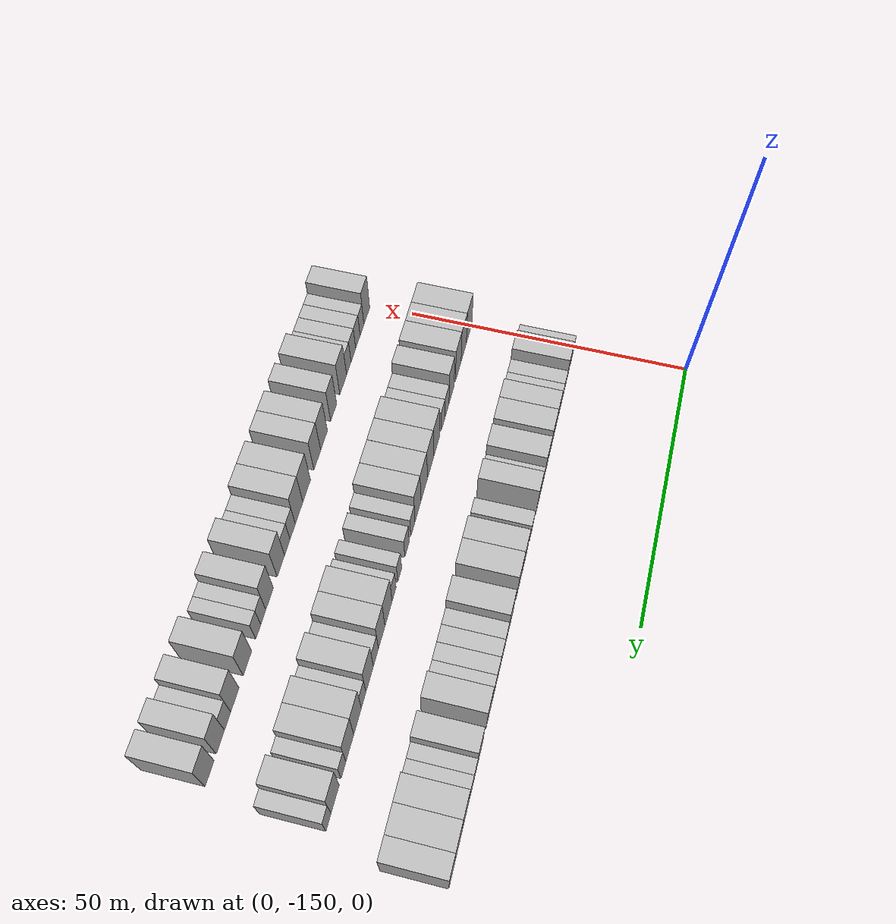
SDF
<sdf version="1.6">
 <world name="default">
  <model name="building_25">
   <static>1</static>
   <pose>25.0000 -146.7279 0 0.000000 0.000000 0.000000</pose>
   <link name="link">
    <pose>0 0 3.00 0 0 0</pose>
    <collision name="collision"><geometry><box><size>10.0000 2.4922 6.0000</size></box></geometry></collision>
    <visual name="visual">
     <cast_shadows>0</cast_shadows>
     <geometry><box><size>10.0000 2.4922 6.0000</size></box></geometry>
     <material>
      <script>
       <uri>model://HANNAS_wall/materials/scripts</uri>
       <uri>model://HANNAS_wall/materials/textures</uri>
       <name>vrc/HANNAS_wall</name>
      </script>
     </material>
    </visual>
   </link>
  </model>
  <model name="building_26">
   <static>1</static>
   <pose>25.0000 -142.4939 0 0.000000 0.000000 0.000000</pose>
   <link name="link">
    <pose>0 0 4.50 0 0 0</pose>
    <collision name="collision"><geometry><box><size>10.0000 3.9759 9.0000</size></box></geometry></collision>
    <visual name="visual">
     <cast_shadows>0</cast_shadows>
     <geometry><box><size>10.0000 3.9759 9.0000</size></box></geometry>
     <material>
      <script>
       <uri>model://HANNAS_wall/materials/scripts</uri>
       <uri>model://HANNAS_wall/materials/textures</uri>
       <name>vrc/HANNAS_wall</name>
      </script>
     </material>
    </visual>
   </link>
  </model>
  <model name="building_27">
   <static>1</static>
   <pose>25.0000 -139.1345 0 0.000000 0.000000 0.000000</pose>
   <link name="link">
    <pose>0 0 3.00 0 0 0</pose>
    <collision name="collision"><geometry><box><size>10.0000 2.7429 6.0000</size></box></geometry></collision>
    <visual name="visual">
     <cast_shadows>0</cast_shadows>
     <geometry><box><size>10.0000 2.7429 6.0000</size></box></geometry>
     <material>
      <script>
       <uri>model://HANNAS_wall/materials/scripts</uri>
       <uri>model://HANNAS_wall/materials/textures</uri>
       <name>vrc/HANNAS_wall</name>
      </script>
     </material>
    </visual>
   </link>
  </model>
  <model name="building_28">
   <static>1</static>
   <pose>25.0000 -136.5492 0 0.000000 0.000000 0.000000</pose>
   <link name="link">
    <pose>0 0 3.00 0 0 0</pose>
    <collision name="collision"><geometry><box><size>10.0000 2.4277 6.0000</size></box></geometry></collision>
    <visual name="visual">
     <cast_shadows>0</cast_shadows>
     <geometry><box><size>10.0000 2.4277 6.0000</size></box></geometry>
     <material>
      <script>
       <uri>model://HANNAS_wall/materials/scripts</uri>
       <uri>model://HANNAS_wall/materials/textures</uri>
       <name>vrc/HANNAS_wall</name>
      </script>
     </material>
    </visual>
   </link>
  </model>
  <model name="building_29">
   <static>1</static>
   <pose>25.0000 -132.5048 0 0.000000 0.000000 0.000000</pose>
   <link name="link">
    <pose>0 0 4.50 0 0 0</pose>
    <collision name="collision"><geometry><box><size>10.0000 3.6610 9.0000</size></box></geometry></collision>
    <visual name="visual">
     <cast_shadows>0</cast_shadows>
     <geometry><box><size>10.0000 3.6610 9.0000</size></box></geometry>
     <material>
      <script>
       <uri>model://HANNAS_wall/materials/scripts</uri>
       <uri>model://HANNAS_wall/materials/textures</uri>
       <name>vrc/HANNAS_wall</name>
      </script>
     </material>
    </visual>
   </link>
  </model>
  <model name="building_30">
   <static>1</static>
   <pose>25.0000 -128.5264 0 0.000000 0.000000 0.000000</pose>
   <link name="link">
    <pose>0 0 4.50 0 0 0</pose>
    <collision name="collision"><geometry><box><size>10.0000 4.2959 9.0000</size></box></geometry></collision>
    <visual name="visual">
     <cast_shadows>0</cast_shadows>
     <geometry><box><size>10.0000 4.2959 9.0000</size></box></geometry>
     <material>
      <script>
       <uri>model://HANNAS_wall/materials/scripts</uri>
       <uri>model://HANNAS_wall/materials/textures</uri>
       <name>vrc/HANNAS_wall</name>
      </script>
     </material>
    </visual>
   </link>
  </model>
  <model name="building_31">
   <static>1</static>
   <pose>25.0000 -123.2931 0 0.000000 0.000000 0.000000</pose>
   <link name="link">
    <pose>0 0 4.50 0 0 0</pose>
    <collision name="collision"><geometry><box><size>10.0000 4.1706 9.0000</size></box></geometry></collision>
    <visual name="visual">
     <cast_shadows>0</cast_shadows>
     <geometry><box><size>10.0000 4.1706 9.0000</size></box></geometry>
     <material>
      <script>
       <uri>model://HANNAS_wall/materials/scripts</uri>
       <uri>model://HANNAS_wall/materials/textures</uri>
       <name>vrc/HANNAS_wall</name>
      </script>
     </material>
    </visual>
   </link>
  </model>
  <model name="building_32">
   <static>1</static>
   <pose>25.0000 -119.9647 0 0.000000 0.000000 0.000000</pose>
   <link name="link">
    <pose>0 0 3.00 0 0 0</pose>
    <collision name="collision"><geometry><box><size>10.0000 2.4863 6.0000</size></box></geometry></collision>
    <visual name="visual">
     <cast_shadows>0</cast_shadows>
     <geometry><box><size>10.0000 2.4863 6.0000</size></box></geometry>
     <material>
      <script>
       <uri>model://HANNAS_wall/materials/scripts</uri>
       <uri>model://HANNAS_wall/materials/textures</uri>
       <name>vrc/HANNAS_wall</name>
      </script>
     </material>
    </visual>
   </link>
  </model>
  <model name="building_33">
   <static>1</static>
   <pose>25.0000 -116.8746 0 0.000000 0.000000 0.000000</pose>
   <link name="link">
    <pose>0 0 4.50 0 0 0</pose>
    <collision name="collision"><geometry><box><size>10.0000 3.6937 9.0000</size></box></geometry></collision>
    <visual name="visual">
     <cast_shadows>0</cast_shadows>
     <geometry><box><size>10.0000 3.6937 9.0000</size></box></geometry>
     <material>
      <script>
       <uri>model://HANNAS_wall/materials/scripts</uri>
       <uri>model://HANNAS_wall/materials/textures</uri>
       <name>vrc/HANNAS_wall</name>
      </script>
     </material>
    </visual>
   </link>
  </model>
  <model name="building_34">
   <static>1</static>
   <pose>25.0000 -111.6336 0 0.000000 0.000000 0.000000</pose>
   <link name="link">
    <pose>0 0 3.00 0 0 0</pose>
    <collision name="collision"><geometry><box><size>10.0000 2.7883 6.0000</size></box></geometry></collision>
    <visual name="visual">
     <cast_shadows>0</cast_shadows>
     <geometry><box><size>10.0000 2.7883 6.0000</size></box></geometry>
     <material>
      <script>
       <uri>model://HANNAS_wall/materials/scripts</uri>
       <uri>model://HANNAS_wall/materials/textures</uri>
       <name>vrc/HANNAS_wall</name>
      </script>
     </material>
    </visual>
   </link>
  </model>
  <model name="building_35">
   <static>1</static>
   <pose>25.0000 -106.2833 0 0.000000 0.000000 0.000000</pose>
   <link name="link">
    <pose>0 0 4.50 0 0 0</pose>
    <collision name="collision"><geometry><box><size>10.0000 3.9123 9.0000</size></box></geometry></collision>
    <visual name="visual">
     <cast_shadows>0</cast_shadows>
     <geometry><box><size>10.0000 3.9123 9.0000</size></box></geometry>
     <material>
      <script>
       <uri>model://HANNAS_wall/materials/scripts</uri>
       <uri>model://HANNAS_wall/materials/textures</uri>
       <name>vrc/HANNAS_wall</name>
      </script>
     </material>
    </visual>
   </link>
  </model>
  <model name="building_36">
   <static>1</static>
   <pose>25.0000 -102.1065 0 0.000000 0.000000 0.000000</pose>
   <link name="link">
    <pose>0 0 4.50 0 0 0</pose>
    <collision name="collision"><geometry><box><size>10.0000 4.4412 9.0000</size></box></geometry></collision>
    <visual name="visual">
     <cast_shadows>0</cast_shadows>
     <geometry><box><size>10.0000 4.4412 9.0000</size></box></geometry>
     <material>
      <script>
       <uri>model://HANNAS_wall/materials/scripts</uri>
       <uri>model://HANNAS_wall/materials/textures</uri>
       <name>vrc/HANNAS_wall</name>
      </script>
     </material>
    </visual>
   </link>
  </model>
  <model name="building_37">
   <static>1</static>
   <pose>25.0000 -95.7705 0 0.000000 0.000000 0.000000</pose>
   <link name="link">
    <pose>0 0 4.50 0 0 0</pose>
    <collision name="collision"><geometry><box><size>10.0000 4.2309 9.0000</size></box></geometry></collision>
    <visual name="visual">
     <cast_shadows>0</cast_shadows>
     <geometry><box><size>10.0000 4.2309 9.0000</size></box></geometry>
     <material>
      <script>
       <uri>model://HANNAS_wall/materials/scripts</uri>
       <uri>model://HANNAS_wall/materials/textures</uri>
       <name>vrc/HANNAS_wall</name>
      </script>
     </material>
    </visual>
   </link>
  </model>
  <model name="building_38">
   <static>1</static>
   <pose>25.0000 -92.2708 0 0.000000 0.000000 0.000000</pose>
   <link name="link">
    <pose>0 0 3.00 0 0 0</pose>
    <collision name="collision"><geometry><box><size>10.0000 2.7686 6.0000</size></box></geometry></collision>
    <visual name="visual">
     <cast_shadows>0</cast_shadows>
     <geometry><box><size>10.0000 2.7686 6.0000</size></box></geometry>
     <material>
      <script>
       <uri>model://HANNAS_wall/materials/scripts</uri>
       <uri>model://HANNAS_wall/materials/textures</uri>
       <name>vrc/HANNAS_wall</name>
      </script>
     </material>
    </visual>
   </link>
  </model>
  <model name="building_39">
   <static>1</static>
   <pose>25.0000 -89.4517 0 0.000000 0.000000 0.000000</pose>
   <link name="link">
    <pose>0 0 3.00 0 0 0</pose>
    <collision name="collision"><geometry><box><size>10.0000 2.8696 6.0000</size></box></geometry></collision>
    <visual name="visual">
     <cast_shadows>0</cast_shadows>
     <geometry><box><size>10.0000 2.8696 6.0000</size></box></geometry>
     <material>
      <script>
       <uri>model://HANNAS_wall/materials/scripts</uri>
       <uri>model://HANNAS_wall/materials/textures</uri>
       <name>vrc/HANNAS_wall</name>
      </script>
     </material>
    </visual>
   </link>
  </model>
  <model name="building_40">
   <static>1</static>
   <pose>25.0000 -86.5726 0 0.000000 0.000000 0.000000</pose>
   <link name="link">
    <pose>0 0 3.00 0 0 0</pose>
    <collision name="collision"><geometry><box><size>10.0000 2.8887 6.0000</size></box></geometry></collision>
    <visual name="visual">
     <cast_shadows>0</cast_shadows>
     <geometry><box><size>10.0000 2.8887 6.0000</size></box></geometry>
     <material>
      <script>
       <uri>model://HANNAS_wall/materials/scripts</uri>
       <uri>model://HANNAS_wall/materials/textures</uri>
       <name>vrc/HANNAS_wall</name>
      </script>
     </material>
    </visual>
   </link>
  </model>
  <model name="building_41">
   <static>1</static>
   <pose>25.0000 -83.7462 0 0.000000 0.000000 0.000000</pose>
   <link name="link">
    <pose>0 0 3.00 0 0 0</pose>
    <collision name="collision"><geometry><box><size>10.0000 2.7640 6.0000</size></box></geometry></collision>
    <visual name="visual">
     <cast_shadows>0</cast_shadows>
     <geometry><box><size>10.0000 2.7640 6.0000</size></box></geometry>
     <material>
      <script>
       <uri>model://HANNAS_wall/materials/scripts</uri>
       <uri>model://HANNAS_wall/materials/textures</uri>
       <name>vrc/HANNAS_wall</name>
      </script>
     </material>
    </visual>
   </link>
  </model>
  <model name="building_42">
   <static>1</static>
   <pose>25.0000 -80.3539 0 0.000000 0.000000 0.000000</pose>
   <link name="link">
    <pose>0 0 4.50 0 0 0</pose>
    <collision name="collision"><geometry><box><size>10.0000 4.0206 9.0000</size></box></geometry></collision>
    <visual name="visual">
     <cast_shadows>0</cast_shadows>
     <geometry><box><size>10.0000 4.0206 9.0000</size></box></geometry>
     <material>
      <script>
       <uri>model://HANNAS_wall/materials/scripts</uri>
       <uri>model://HANNAS_wall/materials/textures</uri>
       <name>vrc/HANNAS_wall</name>
      </script>
     </material>
    </visual>
   </link>
  </model>
  <model name="building_43">
   <static>1</static>
   <pose>25.0000 -74.4029 0 0.000000 0.000000 0.000000</pose>
   <link name="link">
    <pose>0 0 4.50 0 0 0</pose>
    <collision name="collision"><geometry><box><size>10.0000 3.8813 9.0000</size></box></geometry></collision>
    <visual name="visual">
     <cast_shadows>0</cast_shadows>
     <geometry><box><size>10.0000 3.8813 9.0000</size></box></geometry>
     <material>
      <script>
       <uri>model://HANNAS_wall/materials/scripts</uri>
       <uri>model://HANNAS_wall/materials/textures</uri>
       <name>vrc/HANNAS_wall</name>
      </script>
     </material>
    </visual>
   </link>
  </model>
  <model name="building_44">
   <static>1</static>
   <pose>25.0000 -71.2445 0 0.000000 0.000000 0.000000</pose>
   <link name="link">
    <pose>0 0 3.00 0 0 0</pose>
    <collision name="collision"><geometry><box><size>10.0000 2.4356 6.0000</size></box></geometry></collision>
    <visual name="visual">
     <cast_shadows>0</cast_shadows>
     <geometry><box><size>10.0000 2.4356 6.0000</size></box></geometry>
     <material>
      <script>
       <uri>model://HANNAS_wall/materials/scripts</uri>
       <uri>model://HANNAS_wall/materials/textures</uri>
       <name>vrc/HANNAS_wall</name>
      </script>
     </material>
    </visual>
   </link>
  </model>
  <model name="building_45">
   <static>1</static>
   <pose>25.0000 -68.6941 0 0.000000 0.000000 0.000000</pose>
   <link name="link">
    <pose>0 0 3.00 0 0 0</pose>
    <collision name="collision"><geometry><box><size>10.0000 2.6651 6.0000</size></box></geometry></collision>
    <visual name="visual">
     <cast_shadows>0</cast_shadows>
     <geometry><box><size>10.0000 2.6651 6.0000</size></box></geometry>
     <material>
      <script>
       <uri>model://HANNAS_wall/materials/scripts</uri>
       <uri>model://HANNAS_wall/materials/textures</uri>
       <name>vrc/HANNAS_wall</name>
      </script>
     </material>
    </visual>
   </link>
  </model>
  <model name="building_46">
   <static>1</static>
   <pose>25.0000 -65.2576 0 0.000000 0.000000 0.000000</pose>
   <link name="link">
    <pose>0 0 4.50 0 0 0</pose>
    <collision name="collision"><geometry><box><size>10.0000 4.2079 9.0000</size></box></geometry></collision>
    <visual name="visual">
     <cast_shadows>0</cast_shadows>
     <geometry><box><size>10.0000 4.2079 9.0000</size></box></geometry>
     <material>
      <script>
       <uri>model://HANNAS_wall/materials/scripts</uri>
       <uri>model://HANNAS_wall/materials/textures</uri>
       <name>vrc/HANNAS_wall</name>
      </script>
     </material>
    </visual>
   </link>
  </model>
  <model name="building_47">
   <static>1</static>
   <pose>25.0000 -60.9126 0 0.000000 0.000000 0.000000</pose>
   <link name="link">
    <pose>0 0 4.50 0 0 0</pose>
    <collision name="collision"><geometry><box><size>10.0000 4.4822 9.0000</size></box></geometry></collision>
    <visual name="visual">
     <cast_shadows>0</cast_shadows>
     <geometry><box><size>10.0000 4.4822 9.0000</size></box></geometry>
     <material>
      <script>
       <uri>model://HANNAS_wall/materials/scripts</uri>
       <uri>model://HANNAS_wall/materials/textures</uri>
       <name>vrc/HANNAS_wall</name>
      </script>
     </material>
    </visual>
   </link>
  </model>
  <model name="building_48">
   <static>1</static>
   <pose>25.0000 -56.8321 0 0.000000 0.000000 0.000000</pose>
   <link name="link">
    <pose>0 0 4.50 0 0 0</pose>
    <collision name="collision"><geometry><box><size>10.0000 3.6788 9.0000</size></box></geometry></collision>
    <visual name="visual">
     <cast_shadows>0</cast_shadows>
     <geometry><box><size>10.0000 3.6788 9.0000</size></box></geometry>
     <material>
      <script>
       <uri>model://HANNAS_wall/materials/scripts</uri>
       <uri>model://HANNAS_wall/materials/textures</uri>
       <name>vrc/HANNAS_wall</name>
      </script>
     </material>
    </visual>
   </link>
  </model>
  <model name="building_138">
   <static>1</static>
   <pose>44.0000 -148.0430 0 0.000000 0.000000 0.000000</pose>
   <link name="link">
    <pose>0 0 4.50 0 0 0</pose>
    <collision name="collision"><geometry><box><size>10.0000 4.4079 9.0000</size></box></geometry></collision>
    <visual name="visual">
     <cast_shadows>0</cast_shadows>
     <geometry><box><size>10.0000 4.4079 9.0000</size></box></geometry>
     <material>
      <script>
       <uri>model://HANNAS_wall/materials/scripts</uri>
       <uri>model://HANNAS_wall/materials/textures</uri>
       <name>vrc/HANNAS_wall</name>
      </script>
     </material>
    </visual>
   </link>
  </model>
  <model name="building_139">
   <static>1</static>
   <pose>44.0000 -143.8289 0 0.000000 0.000000 0.000000</pose>
   <link name="link">
    <pose>0 0 4.50 0 0 0</pose>
    <collision name="collision"><geometry><box><size>10.0000 4.0201 9.0000</size></box></geometry></collision>
    <visual name="visual">
     <cast_shadows>0</cast_shadows>
     <geometry><box><size>10.0000 4.0201 9.0000</size></box></geometry>
     <material>
      <script>
       <uri>model://HANNAS_wall/materials/scripts</uri>
       <uri>model://HANNAS_wall/materials/textures</uri>
       <name>vrc/HANNAS_wall</name>
      </script>
     </material>
    </visual>
   </link>
  </model>
  <model name="building_140">
   <static>1</static>
   <pose>44.0000 -139.6996 0 0.000000 0.000000 0.000000</pose>
   <link name="link">
    <pose>0 0 4.50 0 0 0</pose>
    <collision name="collision"><geometry><box><size>10.0000 4.2386 9.0000</size></box></geometry></collision>
    <visual name="visual">
     <cast_shadows>0</cast_shadows>
     <geometry><box><size>10.0000 4.2386 9.0000</size></box></geometry>
     <material>
      <script>
       <uri>model://HANNAS_wall/materials/scripts</uri>
       <uri>model://HANNAS_wall/materials/textures</uri>
       <name>vrc/HANNAS_wall</name>
      </script>
     </material>
    </visual>
   </link>
  </model>
  <model name="building_141">
   <static>1</static>
   <pose>44.0000 -134.6802 0 0.000000 0.000000 0.000000</pose>
   <link name="link">
    <pose>0 0 4.50 0 0 0</pose>
    <collision name="collision"><geometry><box><size>10.0000 3.8001 9.0000</size></box></geometry></collision>
    <visual name="visual">
     <cast_shadows>0</cast_shadows>
     <geometry><box><size>10.0000 3.8001 9.0000</size></box></geometry>
     <material>
      <script>
       <uri>model://HANNAS_wall/materials/scripts</uri>
       <uri>model://HANNAS_wall/materials/textures</uri>
       <name>vrc/HANNAS_wall</name>
      </script>
     </material>
    </visual>
   </link>
  </model>
  <model name="building_142">
   <static>1</static>
   <pose>44.0000 -131.3070 0 0.000000 0.000000 0.000000</pose>
   <link name="link">
    <pose>0 0 3.00 0 0 0</pose>
    <collision name="collision"><geometry><box><size>10.0000 2.9463 6.0000</size></box></geometry></collision>
    <visual name="visual">
     <cast_shadows>0</cast_shadows>
     <geometry><box><size>10.0000 2.9463 6.0000</size></box></geometry>
     <material>
      <script>
       <uri>model://HANNAS_wall/materials/scripts</uri>
       <uri>model://HANNAS_wall/materials/textures</uri>
       <name>vrc/HANNAS_wall</name>
      </script>
     </material>
    </visual>
   </link>
  </model>
  <model name="building_143">
   <static>1</static>
   <pose>44.0000 -128.4388 0 0.000000 0.000000 0.000000</pose>
   <link name="link">
    <pose>0 0 3.00 0 0 0</pose>
    <collision name="collision"><geometry><box><size>10.0000 2.7901 6.0000</size></box></geometry></collision>
    <visual name="visual">
     <cast_shadows>0</cast_shadows>
     <geometry><box><size>10.0000 2.7901 6.0000</size></box></geometry>
     <material>
      <script>
       <uri>model://HANNAS_wall/materials/scripts</uri>
       <uri>model://HANNAS_wall/materials/textures</uri>
       <name>vrc/HANNAS_wall</name>
      </script>
     </material>
    </visual>
   </link>
  </model>
  <model name="building_144">
   <static>1</static>
   <pose>44.0000 -123.9021 0 0.000000 0.000000 0.000000</pose>
   <link name="link">
    <pose>0 0 4.50 0 0 0</pose>
    <collision name="collision"><geometry><box><size>10.0000 4.2832 9.0000</size></box></geometry></collision>
    <visual name="visual">
     <cast_shadows>0</cast_shadows>
     <geometry><box><size>10.0000 4.2832 9.0000</size></box></geometry>
     <material>
      <script>
       <uri>model://HANNAS_wall/materials/scripts</uri>
       <uri>model://HANNAS_wall/materials/textures</uri>
       <name>vrc/HANNAS_wall</name>
      </script>
     </material>
    </visual>
   </link>
  </model>
  <model name="building_145">
   <static>1</static>
   <pose>44.0000 -119.6286 0 0.000000 0.000000 0.000000</pose>
   <link name="link">
    <pose>0 0 4.50 0 0 0</pose>
    <collision name="collision"><geometry><box><size>10.0000 4.2638 9.0000</size></box></geometry></collision>
    <visual name="visual">
     <cast_shadows>0</cast_shadows>
     <geometry><box><size>10.0000 4.2638 9.0000</size></box></geometry>
     <material>
      <script>
       <uri>model://HANNAS_wall/materials/scripts</uri>
       <uri>model://HANNAS_wall/materials/textures</uri>
       <name>vrc/HANNAS_wall</name>
      </script>
     </material>
    </visual>
   </link>
  </model>
  <model name="building_146">
   <static>1</static>
   <pose>44.0000 -115.3119 0 0.000000 0.000000 0.000000</pose>
   <link name="link">
    <pose>0 0 4.50 0 0 0</pose>
    <collision name="collision"><geometry><box><size>10.0000 4.3695 9.0000</size></box></geometry></collision>
    <visual name="visual">
     <cast_shadows>0</cast_shadows>
     <geometry><box><size>10.0000 4.3695 9.0000</size></box></geometry>
     <material>
      <script>
       <uri>model://HANNAS_wall/materials/scripts</uri>
       <uri>model://HANNAS_wall/materials/textures</uri>
       <name>vrc/HANNAS_wall</name>
      </script>
     </material>
    </visual>
   </link>
  </model>
  <model name="building_147">
   <static>1</static>
   <pose>44.0000 -111.1638 0 0.000000 0.000000 0.000000</pose>
   <link name="link">
    <pose>0 0 4.50 0 0 0</pose>
    <collision name="collision"><geometry><box><size>10.0000 3.9267 9.0000</size></box></geometry></collision>
    <visual name="visual">
     <cast_shadows>0</cast_shadows>
     <geometry><box><size>10.0000 3.9267 9.0000</size></box></geometry>
     <material>
      <script>
       <uri>model://HANNAS_wall/materials/scripts</uri>
       <uri>model://HANNAS_wall/materials/textures</uri>
       <name>vrc/HANNAS_wall</name>
      </script>
     </material>
    </visual>
   </link>
  </model>
  <model name="building_148">
   <static>1</static>
   <pose>44.0000 -107.8370 0 0.000000 0.000000 0.000000</pose>
   <link name="link">
    <pose>0 0 3.00 0 0 0</pose>
    <collision name="collision"><geometry><box><size>10.0000 2.7271 6.0000</size></box></geometry></collision>
    <visual name="visual">
     <cast_shadows>0</cast_shadows>
     <geometry><box><size>10.0000 2.7271 6.0000</size></box></geometry>
     <material>
      <script>
       <uri>model://HANNAS_wall/materials/scripts</uri>
       <uri>model://HANNAS_wall/materials/textures</uri>
       <name>vrc/HANNAS_wall</name>
      </script>
     </material>
    </visual>
   </link>
  </model>
  <model name="building_149">
   <static>1</static>
   <pose>44.0000 -104.0694 0 0.000000 0.000000 0.000000</pose>
   <link name="link">
    <pose>0 0 3.00 0 0 0</pose>
    <collision name="collision"><geometry><box><size>10.0000 2.8081 6.0000</size></box></geometry></collision>
    <visual name="visual">
     <cast_shadows>0</cast_shadows>
     <geometry><box><size>10.0000 2.8081 6.0000</size></box></geometry>
     <material>
      <script>
       <uri>model://HANNAS_wall/materials/scripts</uri>
       <uri>model://HANNAS_wall/materials/textures</uri>
       <name>vrc/HANNAS_wall</name>
      </script>
     </material>
    </visual>
   </link>
  </model>
  <model name="building_150">
   <static>1</static>
   <pose>44.0000 -99.4450 0 0.000000 0.000000 0.000000</pose>
   <link name="link">
    <pose>0 0 3.00 0 0 0</pose>
    <collision name="collision"><geometry><box><size>10.0000 2.4406 6.0000</size></box></geometry></collision>
    <visual name="visual">
     <cast_shadows>0</cast_shadows>
     <geometry><box><size>10.0000 2.4406 6.0000</size></box></geometry>
     <material>
      <script>
       <uri>model://HANNAS_wall/materials/scripts</uri>
       <uri>model://HANNAS_wall/materials/textures</uri>
       <name>vrc/HANNAS_wall</name>
      </script>
     </material>
    </visual>
   </link>
  </model>
  <model name="building_151">
   <static>1</static>
   <pose>44.0000 -95.9896 0 0.000000 0.000000 0.000000</pose>
   <link name="link">
    <pose>0 0 3.00 0 0 0</pose>
    <collision name="collision"><geometry><box><size>10.0000 2.4702 6.0000</size></box></geometry></collision>
    <visual name="visual">
     <cast_shadows>0</cast_shadows>
     <geometry><box><size>10.0000 2.4702 6.0000</size></box></geometry>
     <material>
      <script>
       <uri>model://HANNAS_wall/materials/scripts</uri>
       <uri>model://HANNAS_wall/materials/textures</uri>
       <name>vrc/HANNAS_wall</name>
      </script>
     </material>
    </visual>
   </link>
  </model>
  <model name="building_152">
   <static>1</static>
   <pose>44.0000 -92.6120 0 0.000000 0.000000 0.000000</pose>
   <link name="link">
    <pose>0 0 4.50 0 0 0</pose>
    <collision name="collision"><geometry><box><size>10.0000 4.2850 9.0000</size></box></geometry></collision>
    <visual name="visual">
     <cast_shadows>0</cast_shadows>
     <geometry><box><size>10.0000 4.2850 9.0000</size></box></geometry>
     <material>
      <script>
       <uri>model://HANNAS_wall/materials/scripts</uri>
       <uri>model://HANNAS_wall/materials/textures</uri>
       <name>vrc/HANNAS_wall</name>
      </script>
     </material>
    </visual>
   </link>
  </model>
  <model name="building_153">
   <static>1</static>
   <pose>44.0000 -88.5623 0 0.000000 0.000000 0.000000</pose>
   <link name="link">
    <pose>0 0 4.50 0 0 0</pose>
    <collision name="collision"><geometry><box><size>10.0000 3.8144 9.0000</size></box></geometry></collision>
    <visual name="visual">
     <cast_shadows>0</cast_shadows>
     <geometry><box><size>10.0000 3.8144 9.0000</size></box></geometry>
     <material>
      <script>
       <uri>model://HANNAS_wall/materials/scripts</uri>
       <uri>model://HANNAS_wall/materials/textures</uri>
       <name>vrc/HANNAS_wall</name>
      </script>
     </material>
    </visual>
   </link>
  </model>
  <model name="building_154">
   <static>1</static>
   <pose>44.0000 -85.1809 0 0.000000 0.000000 0.000000</pose>
   <link name="link">
    <pose>0 0 3.00 0 0 0</pose>
    <collision name="collision"><geometry><box><size>10.0000 2.9485 6.0000</size></box></geometry></collision>
    <visual name="visual">
     <cast_shadows>0</cast_shadows>
     <geometry><box><size>10.0000 2.9485 6.0000</size></box></geometry>
     <material>
      <script>
       <uri>model://HANNAS_wall/materials/scripts</uri>
       <uri>model://HANNAS_wall/materials/textures</uri>
       <name>vrc/HANNAS_wall</name>
      </script>
     </material>
    </visual>
   </link>
  </model>
  <model name="building_155">
   <static>1</static>
   <pose>44.0000 -81.6062 0 0.000000 0.000000 0.000000</pose>
   <link name="link">
    <pose>0 0 4.50 0 0 0</pose>
    <collision name="collision"><geometry><box><size>10.0000 4.2010 9.0000</size></box></geometry></collision>
    <visual name="visual">
     <cast_shadows>0</cast_shadows>
     <geometry><box><size>10.0000 4.2010 9.0000</size></box></geometry>
     <material>
      <script>
       <uri>model://HANNAS_wall/materials/scripts</uri>
       <uri>model://HANNAS_wall/materials/textures</uri>
       <name>vrc/HANNAS_wall</name>
      </script>
     </material>
    </visual>
   </link>
  </model>
  <model name="building_156">
   <static>1</static>
   <pose>44.0000 -78.2153 0 0.000000 0.000000 0.000000</pose>
   <link name="link">
    <pose>0 0 3.00 0 0 0</pose>
    <collision name="collision"><geometry><box><size>10.0000 2.5806 6.0000</size></box></geometry></collision>
    <visual name="visual">
     <cast_shadows>0</cast_shadows>
     <geometry><box><size>10.0000 2.5806 6.0000</size></box></geometry>
     <material>
      <script>
       <uri>model://HANNAS_wall/materials/scripts</uri>
       <uri>model://HANNAS_wall/materials/textures</uri>
       <name>vrc/HANNAS_wall</name>
      </script>
     </material>
    </visual>
   </link>
  </model>
  <model name="building_157">
   <static>1</static>
   <pose>44.0000 -74.8709 0 0.000000 0.000000 0.000000</pose>
   <link name="link">
    <pose>0 0 4.50 0 0 0</pose>
    <collision name="collision"><geometry><box><size>10.0000 4.1081 9.0000</size></box></geometry></collision>
    <visual name="visual">
     <cast_shadows>0</cast_shadows>
     <geometry><box><size>10.0000 4.1081 9.0000</size></box></geometry>
     <material>
      <script>
       <uri>model://HANNAS_wall/materials/scripts</uri>
       <uri>model://HANNAS_wall/materials/textures</uri>
       <name>vrc/HANNAS_wall</name>
      </script>
     </material>
    </visual>
   </link>
  </model>
  <model name="building_158">
   <static>1</static>
   <pose>44.0000 -70.7129 0 0.000000 0.000000 0.000000</pose>
   <link name="link">
    <pose>0 0 4.50 0 0 0</pose>
    <collision name="collision"><geometry><box><size>10.0000 4.2079 9.0000</size></box></geometry></collision>
    <visual name="visual">
     <cast_shadows>0</cast_shadows>
     <geometry><box><size>10.0000 4.2079 9.0000</size></box></geometry>
     <material>
      <script>
       <uri>model://HANNAS_wall/materials/scripts</uri>
       <uri>model://HANNAS_wall/materials/textures</uri>
       <name>vrc/HANNAS_wall</name>
      </script>
     </material>
    </visual>
   </link>
  </model>
  <model name="building_159">
   <static>1</static>
   <pose>44.0000 -67.3486 0 0.000000 0.000000 0.000000</pose>
   <link name="link">
    <pose>0 0 3.00 0 0 0</pose>
    <collision name="collision"><geometry><box><size>10.0000 2.5207 6.0000</size></box></geometry></collision>
    <visual name="visual">
     <cast_shadows>0</cast_shadows>
     <geometry><box><size>10.0000 2.5207 6.0000</size></box></geometry>
     <material>
      <script>
       <uri>model://HANNAS_wall/materials/scripts</uri>
       <uri>model://HANNAS_wall/materials/textures</uri>
       <name>vrc/HANNAS_wall</name>
      </script>
     </material>
    </visual>
   </link>
  </model>
  <model name="building_160">
   <static>1</static>
   <pose>44.0000 -62.9996 0 0.000000 0.000000 0.000000</pose>
   <link name="link">
    <pose>0 0 4.50 0 0 0</pose>
    <collision name="collision"><geometry><box><size>10.0000 4.1773 9.0000</size></box></geometry></collision>
    <visual name="visual">
     <cast_shadows>0</cast_shadows>
     <geometry><box><size>10.0000 4.1773 9.0000</size></box></geometry>
     <material>
      <script>
       <uri>model://HANNAS_wall/materials/scripts</uri>
       <uri>model://HANNAS_wall/materials/textures</uri>
       <name>vrc/HANNAS_wall</name>
      </script>
     </material>
    </visual>
   </link>
  </model>
  <model name="building_161">
   <static>1</static>
   <pose>44.0000 -59.6308 0 0.000000 0.000000 0.000000</pose>
   <link name="link">
    <pose>0 0 3.00 0 0 0</pose>
    <collision name="collision"><geometry><box><size>10.0000 2.5603 6.0000</size></box></geometry></collision>
    <visual name="visual">
     <cast_shadows>0</cast_shadows>
     <geometry><box><size>10.0000 2.5603 6.0000</size></box></geometry>
     <material>
      <script>
       <uri>model://HANNAS_wall/materials/scripts</uri>
       <uri>model://HANNAS_wall/materials/textures</uri>
       <name>vrc/HANNAS_wall</name>
      </script>
     </material>
    </visual>
   </link>
  </model>
  <model name="building_257">
   <static>1</static>
   <pose>63.0000 -147.3863 0 0.000000 0.000000 0.000000</pose>
   <link name="link">
    <pose>0 0 4.50 0 0 0</pose>
    <collision name="collision"><geometry><box><size>10.0000 3.8979 9.0000</size></box></geometry></collision>
    <visual name="visual">
     <cast_shadows>0</cast_shadows>
     <geometry><box><size>10.0000 3.8979 9.0000</size></box></geometry>
     <material>
      <script>
       <uri>model://HANNAS_wall/materials/scripts</uri>
       <uri>model://HANNAS_wall/materials/textures</uri>
       <name>vrc/HANNAS_wall</name>
      </script>
     </material>
    </visual>
   </link>
  </model>
  <model name="building_258">
   <static>1</static>
   <pose>63.0000 -144.1984 0 0.000000 0.000000 0.000000</pose>
   <link name="link">
    <pose>0 0 3.00 0 0 0</pose>
    <collision name="collision"><geometry><box><size>10.0000 2.4780 6.0000</size></box></geometry></collision>
    <visual name="visual">
     <cast_shadows>0</cast_shadows>
     <geometry><box><size>10.0000 2.4780 6.0000</size></box></geometry>
     <material>
      <script>
       <uri>model://HANNAS_wall/materials/scripts</uri>
       <uri>model://HANNAS_wall/materials/textures</uri>
       <name>vrc/HANNAS_wall</name>
      </script>
     </material>
    </visual>
   </link>
  </model>
  <model name="building_259">
   <static>1</static>
   <pose>63.0000 -141.5056 0 0.000000 0.000000 0.000000</pose>
   <link name="link">
    <pose>0 0 3.00 0 0 0</pose>
    <collision name="collision"><geometry><box><size>10.0000 2.9075 6.0000</size></box></geometry></collision>
    <visual name="visual">
     <cast_shadows>0</cast_shadows>
     <geometry><box><size>10.0000 2.9075 6.0000</size></box></geometry>
     <material>
      <script>
       <uri>model://HANNAS_wall/materials/scripts</uri>
       <uri>model://HANNAS_wall/materials/textures</uri>
       <name>vrc/HANNAS_wall</name>
      </script>
     </material>
    </visual>
   </link>
  </model>
  <model name="building_260">
   <static>1</static>
   <pose>63.0000 -138.5578 0 0.000000 0.000000 0.000000</pose>
   <link name="link">
    <pose>0 0 3.00 0 0 0</pose>
    <collision name="collision"><geometry><box><size>10.0000 2.9880 6.0000</size></box></geometry></collision>
    <visual name="visual">
     <cast_shadows>0</cast_shadows>
     <geometry><box><size>10.0000 2.9880 6.0000</size></box></geometry>
     <material>
      <script>
       <uri>model://HANNAS_wall/materials/scripts</uri>
       <uri>model://HANNAS_wall/materials/textures</uri>
       <name>vrc/HANNAS_wall</name>
      </script>
     </material>
    </visual>
   </link>
  </model>
  <model name="building_261">
   <static>1</static>
   <pose>63.0000 -135.6536 0 0.000000 0.000000 0.000000</pose>
   <link name="link">
    <pose>0 0 3.00 0 0 0</pose>
    <collision name="collision"><geometry><box><size>10.0000 2.8206 6.0000</size></box></geometry></collision>
    <visual name="visual">
     <cast_shadows>0</cast_shadows>
     <geometry><box><size>10.0000 2.8206 6.0000</size></box></geometry>
     <material>
      <script>
       <uri>model://HANNAS_wall/materials/scripts</uri>
       <uri>model://HANNAS_wall/materials/textures</uri>
       <name>vrc/HANNAS_wall</name>
      </script>
     </material>
    </visual>
   </link>
  </model>
  <model name="building_262">
   <static>1</static>
   <pose>63.0000 -132.1346 0 0.000000 0.000000 0.000000</pose>
   <link name="link">
    <pose>0 0 4.50 0 0 0</pose>
    <collision name="collision"><geometry><box><size>10.0000 4.2174 9.0000</size></box></geometry></collision>
    <visual name="visual">
     <cast_shadows>0</cast_shadows>
     <geometry><box><size>10.0000 4.2174 9.0000</size></box></geometry>
     <material>
      <script>
       <uri>model://HANNAS_wall/materials/scripts</uri>
       <uri>model://HANNAS_wall/materials/textures</uri>
       <name>vrc/HANNAS_wall</name>
      </script>
     </material>
    </visual>
   </link>
  </model>
  <model name="building_263">
   <static>1</static>
   <pose>63.0000 -126.2227 0 0.000000 0.000000 0.000000</pose>
   <link name="link">
    <pose>0 0 4.50 0 0 0</pose>
    <collision name="collision"><geometry><box><size>10.0000 3.6063 9.0000</size></box></geometry></collision>
    <visual name="visual">
     <cast_shadows>0</cast_shadows>
     <geometry><box><size>10.0000 3.6063 9.0000</size></box></geometry>
     <material>
      <script>
       <uri>model://HANNAS_wall/materials/scripts</uri>
       <uri>model://HANNAS_wall/materials/textures</uri>
       <name>vrc/HANNAS_wall</name>
      </script>
     </material>
    </visual>
   </link>
  </model>
  <model name="building_264">
   <static>1</static>
   <pose>63.0000 -120.4462 0 0.000000 0.000000 0.000000</pose>
   <link name="link">
    <pose>0 0 4.50 0 0 0</pose>
    <collision name="collision"><geometry><box><size>10.0000 3.9468 9.0000</size></box></geometry></collision>
    <visual name="visual">
     <cast_shadows>0</cast_shadows>
     <geometry><box><size>10.0000 3.9468 9.0000</size></box></geometry>
     <material>
      <script>
       <uri>model://HANNAS_wall/materials/scripts</uri>
       <uri>model://HANNAS_wall/materials/textures</uri>
       <name>vrc/HANNAS_wall</name>
      </script>
     </material>
    </visual>
   </link>
  </model>
  <model name="building_265">
   <static>1</static>
   <pose>63.0000 -116.5039 0 0.000000 0.000000 0.000000</pose>
   <link name="link">
    <pose>0 0 4.50 0 0 0</pose>
    <collision name="collision"><geometry><box><size>10.0000 3.9377 9.0000</size></box></geometry></collision>
    <visual name="visual">
     <cast_shadows>0</cast_shadows>
     <geometry><box><size>10.0000 3.9377 9.0000</size></box></geometry>
     <material>
      <script>
       <uri>model://HANNAS_wall/materials/scripts</uri>
       <uri>model://HANNAS_wall/materials/textures</uri>
       <name>vrc/HANNAS_wall</name>
      </script>
     </material>
    </visual>
   </link>
  </model>
  <model name="building_266">
   <static>1</static>
   <pose>63.0000 -110.3951 0 0.000000 0.000000 0.000000</pose>
   <link name="link">
    <pose>0 0 4.50 0 0 0</pose>
    <collision name="collision"><geometry><box><size>10.0000 4.2798 9.0000</size></box></geometry></collision>
    <visual name="visual">
     <cast_shadows>0</cast_shadows>
     <geometry><box><size>10.0000 4.2798 9.0000</size></box></geometry>
     <material>
      <script>
       <uri>model://HANNAS_wall/materials/scripts</uri>
       <uri>model://HANNAS_wall/materials/textures</uri>
       <name>vrc/HANNAS_wall</name>
      </script>
     </material>
    </visual>
   </link>
  </model>
  <model name="building_267">
   <static>1</static>
   <pose>63.0000 -106.1713 0 0.000000 0.000000 0.000000</pose>
   <link name="link">
    <pose>0 0 4.50 0 0 0</pose>
    <collision name="collision"><geometry><box><size>10.0000 4.1678 9.0000</size></box></geometry></collision>
    <visual name="visual">
     <cast_shadows>0</cast_shadows>
     <geometry><box><size>10.0000 4.1678 9.0000</size></box></geometry>
     <material>
      <script>
       <uri>model://HANNAS_wall/materials/scripts</uri>
       <uri>model://HANNAS_wall/materials/textures</uri>
       <name>vrc/HANNAS_wall</name>
      </script>
     </material>
    </visual>
   </link>
  </model>
  <model name="building_268">
   <static>1</static>
   <pose>63.0000 -102.6502 0 0.000000 0.000000 0.000000</pose>
   <link name="link">
    <pose>0 0 3.00 0 0 0</pose>
    <collision name="collision"><geometry><box><size>10.0000 2.8745 6.0000</size></box></geometry></collision>
    <visual name="visual">
     <cast_shadows>0</cast_shadows>
     <geometry><box><size>10.0000 2.8745 6.0000</size></box></geometry>
     <material>
      <script>
       <uri>model://HANNAS_wall/materials/scripts</uri>
       <uri>model://HANNAS_wall/materials/textures</uri>
       <name>vrc/HANNAS_wall</name>
      </script>
     </material>
    </visual>
   </link>
  </model>
  <model name="building_269">
   <static>1</static>
   <pose>63.0000 -99.7580 0 0.000000 0.000000 0.000000</pose>
   <link name="link">
    <pose>0 0 3.00 0 0 0</pose>
    <collision name="collision"><geometry><box><size>10.0000 2.9099 6.0000</size></box></geometry></collision>
    <visual name="visual">
     <cast_shadows>0</cast_shadows>
     <geometry><box><size>10.0000 2.9099 6.0000</size></box></geometry>
     <material>
      <script>
       <uri>model://HANNAS_wall/materials/scripts</uri>
       <uri>model://HANNAS_wall/materials/textures</uri>
       <name>vrc/HANNAS_wall</name>
      </script>
     </material>
    </visual>
   </link>
  </model>
  <model name="building_270">
   <static>1</static>
   <pose>63.0000 -96.3600 0 0.000000 0.000000 0.000000</pose>
   <link name="link">
    <pose>0 0 4.50 0 0 0</pose>
    <collision name="collision"><geometry><box><size>10.0000 3.8860 9.0000</size></box></geometry></collision>
    <visual name="visual">
     <cast_shadows>0</cast_shadows>
     <geometry><box><size>10.0000 3.8860 9.0000</size></box></geometry>
     <material>
      <script>
       <uri>model://HANNAS_wall/materials/scripts</uri>
       <uri>model://HANNAS_wall/materials/textures</uri>
       <name>vrc/HANNAS_wall</name>
      </script>
     </material>
    </visual>
   </link>
  </model>
  <model name="building_271">
   <static>1</static>
   <pose>63.0000 -90.5038 0 0.000000 0.000000 0.000000</pose>
   <link name="link">
    <pose>0 0 4.50 0 0 0</pose>
    <collision name="collision"><geometry><box><size>10.0000 3.8265 9.0000</size></box></geometry></collision>
    <visual name="visual">
     <cast_shadows>0</cast_shadows>
     <geometry><box><size>10.0000 3.8265 9.0000</size></box></geometry>
     <material>
      <script>
       <uri>model://HANNAS_wall/materials/scripts</uri>
       <uri>model://HANNAS_wall/materials/textures</uri>
       <name>vrc/HANNAS_wall</name>
      </script>
     </material>
    </visual>
   </link>
  </model>
  <model name="building_272">
   <static>1</static>
   <pose>63.0000 -87.3188 0 0.000000 0.000000 0.000000</pose>
   <link name="link">
    <pose>0 0 3.00 0 0 0</pose>
    <collision name="collision"><geometry><box><size>10.0000 2.5435 6.0000</size></box></geometry></collision>
    <visual name="visual">
     <cast_shadows>0</cast_shadows>
     <geometry><box><size>10.0000 2.5435 6.0000</size></box></geometry>
     <material>
      <script>
       <uri>model://HANNAS_wall/materials/scripts</uri>
       <uri>model://HANNAS_wall/materials/textures</uri>
       <name>vrc/HANNAS_wall</name>
      </script>
     </material>
    </visual>
   </link>
  </model>
  <model name="building_273">
   <static>1</static>
   <pose>63.0000 -84.8208 0 0.000000 0.000000 0.000000</pose>
   <link name="link">
    <pose>0 0 3.00 0 0 0</pose>
    <collision name="collision"><geometry><box><size>10.0000 2.4524 6.0000</size></box></geometry></collision>
    <visual name="visual">
     <cast_shadows>0</cast_shadows>
     <geometry><box><size>10.0000 2.4524 6.0000</size></box></geometry>
     <material>
      <script>
       <uri>model://HANNAS_wall/materials/scripts</uri>
       <uri>model://HANNAS_wall/materials/textures</uri>
       <name>vrc/HANNAS_wall</name>
      </script>
     </material>
    </visual>
   </link>
  </model>
  <model name="building_274">
   <static>1</static>
   <pose>63.0000 -79.5449 0 0.000000 0.000000 0.000000</pose>
   <link name="link">
    <pose>0 0 4.50 0 0 0</pose>
    <collision name="collision"><geometry><box><size>10.0000 4.0993 9.0000</size></box></geometry></collision>
    <visual name="visual">
     <cast_shadows>0</cast_shadows>
     <geometry><box><size>10.0000 4.0993 9.0000</size></box></geometry>
     <material>
      <script>
       <uri>model://HANNAS_wall/materials/scripts</uri>
       <uri>model://HANNAS_wall/materials/textures</uri>
       <name>vrc/HANNAS_wall</name>
      </script>
     </material>
    </visual>
   </link>
  </model>
  <model name="building_275">
   <static>1</static>
   <pose>63.0000 -73.5718 0 0.000000 0.000000 0.000000</pose>
   <link name="link">
    <pose>0 0 4.50 0 0 0</pose>
    <collision name="collision"><geometry><box><size>10.0000 3.8469 9.0000</size></box></geometry></collision>
    <visual name="visual">
     <cast_shadows>0</cast_shadows>
     <geometry><box><size>10.0000 3.8469 9.0000</size></box></geometry>
     <material>
      <script>
       <uri>model://HANNAS_wall/materials/scripts</uri>
       <uri>model://HANNAS_wall/materials/textures</uri>
       <name>vrc/HANNAS_wall</name>
      </script>
     </material>
    </visual>
   </link>
  </model>
  <model name="building_276">
   <static>1</static>
   <pose>63.0000 -70.2049 0 0.000000 0.000000 0.000000</pose>
   <link name="link">
    <pose>0 0 3.00 0 0 0</pose>
    <collision name="collision"><geometry><box><size>10.0000 2.8868 6.0000</size></box></geometry></collision>
    <visual name="visual">
     <cast_shadows>0</cast_shadows>
     <geometry><box><size>10.0000 2.8868 6.0000</size></box></geometry>
     <material>
      <script>
       <uri>model://HANNAS_wall/materials/scripts</uri>
       <uri>model://HANNAS_wall/materials/textures</uri>
       <name>vrc/HANNAS_wall</name>
      </script>
     </material>
    </visual>
   </link>
  </model>
  <model name="building_277">
   <static>1</static>
   <pose>63.0000 -66.9258 0 0.000000 0.000000 0.000000</pose>
   <link name="link">
    <pose>0 0 4.50 0 0 0</pose>
    <collision name="collision"><geometry><box><size>10.0000 3.6714 9.0000</size></box></geometry></collision>
    <visual name="visual">
     <cast_shadows>0</cast_shadows>
     <geometry><box><size>10.0000 3.6714 9.0000</size></box></geometry>
     <material>
      <script>
       <uri>model://HANNAS_wall/materials/scripts</uri>
       <uri>model://HANNAS_wall/materials/textures</uri>
       <name>vrc/HANNAS_wall</name>
      </script>
     </material>
    </visual>
   </link>
  </model>
  <model name="building_278">
   <static>1</static>
   <pose>63.0000 -62.1195 0 0.000000 0.000000 0.000000</pose>
   <link name="link">
    <pose>0 0 4.50 0 0 0</pose>
    <collision name="collision"><geometry><box><size>10.0000 3.9412 9.0000</size></box></geometry></collision>
    <visual name="visual">
     <cast_shadows>0</cast_shadows>
     <geometry><box><size>10.0000 3.9412 9.0000</size></box></geometry>
     <material>
      <script>
       <uri>model://HANNAS_wall/materials/scripts</uri>
       <uri>model://HANNAS_wall/materials/textures</uri>
       <name>vrc/HANNAS_wall</name>
      </script>
     </material>
    </visual>
   </link>
  </model>
 </world>
</sdf>
